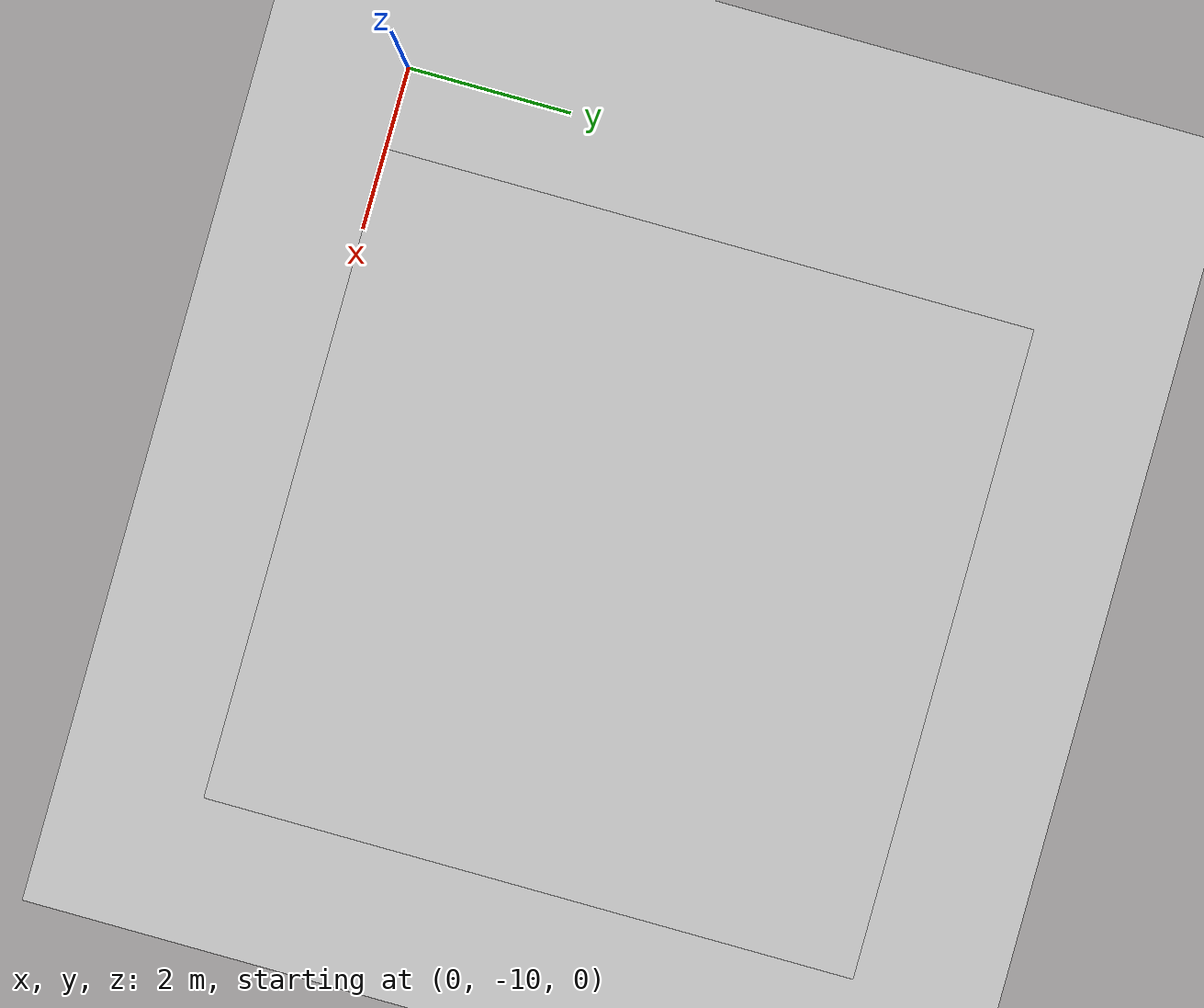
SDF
<?xml version="1.0"?>
<sdf version="1.4">
  <world name="default">
    <include>
      <uri>model://ground_plane</uri>
    </include>
    <include>
      <uri>model://sun</uri>
    </include>
    <include>
      <uri>model://bump_surface</uri>
      <name>bump_surface</name>
      <pose>1 -2 0  0 0 0</pose>
    </include>
  </world>
</sdf>

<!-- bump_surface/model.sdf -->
<sdf version='1.6'>
  <model name='bump_surface'>
  <pose>3 -2 0  0 0 0</pose>
  <static>true</static>
  <link name="body">
  <collision name="collision">
    <geometry>
      <mesh><uri>model://bump_surface/bump_surface.dae</uri></mesh>
    </geometry>
    <surface>
      <friction>
        <ode>
          <mu>100</mu>
          <mu2>50</mu2>
        </ode>
      </friction>
    </surface>
  </collision>
    <visual name="visual">
      <geometry>
        <mesh><uri>model://bump_surface/bump_surface.dae</uri></mesh>
      </geometry>
    </visual>
  </link>
  </model>
</sdf>
